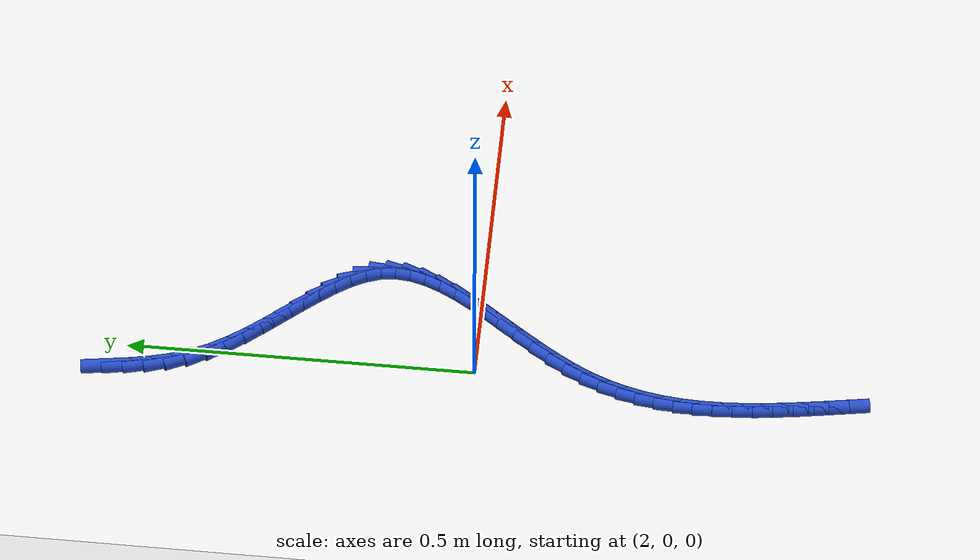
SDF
<sdf version="1.6">
 <world name="default">
  <model name="ground_plane">
   <static>1</static>
   <link name="link">
    <collision name="collision">
     <geometry><plane><normal>0 0 1</normal><size>100 100</size></plane></geometry>
     <surface><friction><ode><mu>100</mu><mu2>50</mu2></ode></friction></surface>
    </collision>
    <visual name="visual">
     <cast_shadows>0</cast_shadows>
     <geometry><plane><normal>0 0 1</normal><size>100 100</size></plane></geometry>
     <material>
      <script><uri>file://media/materials/scripts/gazebo.material</uri><name>Gazebo/WhiteGlow</name></script>
     </material>
    </visual>
   </link>
  </model>
  <model name="line">
   <link name="link_103">
    <pose>1.9564693129658475 0.5191426443502426 0.01 0 1.57 -1.4234752158057509</pose>
    <collision name="collision">
     <geometry><cylinder><radius>0.01</radius><length>0.08</length></cylinder></geometry>
    </collision>
    <visual name="visual">
     <material>
      <script><name>Gazebo/Blue</name><uri>file://media/materials/scripts/gazebo.material</uri></script>
     </material>
     <geometry><cylinder><radius>0.01</radius><length>0.08</length></cylinder></geometry>
    </visual>
   </link>
   <link name="link_104">
    <pose>1.9607513979031044 0.4902868935668443 0.01 0 1.57 -1.3808215258606822</pose>
    <collision name="collision">
     <geometry><cylinder><radius>0.01</radius><length>0.08</length></cylinder></geometry>
    </collision>
    <visual name="visual">
     <material>
      <script><name>Gazebo/Blue</name><uri>file://media/materials/scripts/gazebo.material</uri></script>
     </material>
     <geometry><cylinder><radius>0.01</radius><length>0.08</length></cylinder></geometry>
    </visual>
   </link>
   <link name="link_105">
    <pose>1.9662614771434177 0.46163239759659774 0.01 0 1.57 -1.3167183021721809</pose>
    <collision name="collision">
     <geometry><cylinder><radius>0.01</radius><length>0.08</length></cylinder></geometry>
    </collision>
    <visual name="visual">
     <material>
      <script><name>Gazebo/Blue</name><uri>file://media/materials/scripts/gazebo.material</uri></script>
     </material>
     <geometry><cylinder><radius>0.01</radius><length>0.08</length></cylinder></geometry>
    </visual>
   </link>
   <link name="link_106">
    <pose>1.9735797310925138 0.43345170849553866 0.01 0 1.57 -1.2307291127943643</pose>
    <collision name="collision">
     <geometry><cylinder><radius>0.01</radius><length>0.08</length></cylinder></geometry>
    </collision>
    <visual name="visual">
     <material>
      <script><name>Gazebo/Blue</name><uri>file://media/materials/scripts/gazebo.material</uri></script>
     </material>
     <geometry><cylinder><radius>0.01</radius><length>0.08</length></cylinder></geometry>
    </visual>
   </link>
   <link name="link_107">
    <pose>1.9832863401561176 0.40601737831970425 0.01 0 1.57 -1.1242628585493688</pose>
    <collision name="collision">
     <geometry><cylinder><radius>0.01</radius><length>0.08</length></cylinder></geometry>
    </collision>
    <visual name="visual">
     <material>
      <script><name>Gazebo/Blue</name><uri>file://media/materials/scripts/gazebo.material</uri></script>
     </material>
     <geometry><cylinder><radius>0.01</radius><length>0.08</length></cylinder></geometry>
    </visual>
   </link>
   <link name="link_108">
    <pose>1.9959372888625755 0.3795944499081145 0.01 0 1.57 -1.0210021619059557</pose>
    <collision name="collision">
     <geometry><cylinder><radius>0.01</radius><length>0.08</length></cylinder></geometry>
    </collision>
    <visual name="visual">
     <material>
      <script><name>Gazebo/Blue</name><uri>file://media/materials/scripts/gazebo.material</uri></script>
     </material>
     <geometry><cylinder><radius>0.01</radius><length>0.08</length></cylinder></geometry>
    </visual>
   </link>
   <link name="link_109">
    <pose>2.01146601126139 0.35425475687755703 0.01 0 1.57 -0.9436065019082184</pose>
    <collision name="collision">
     <geometry><cylinder><radius>0.01</radius><length>0.08</length></cylinder></geometry>
    </collision>
    <visual name="visual">
     <material>
      <script><name>Gazebo/Blue</name><uri>file://media/materials/scripts/gazebo.material</uri></script>
     </material>
     <geometry><cylinder><radius>0.01</radius><length>0.08</length></cylinder></geometry>
    </visual>
   </link>
   <link name="link_110">
    <pose>2.0291443260753557 0.32986479980431344 0.01 0 1.57 -0.8908856722849666</pose>
    <collision name="collision">
     <geometry><cylinder><radius>0.01</radius><length>0.08</length></cylinder></geometry>
    </collision>
    <visual name="visual">
     <material>
      <script><name>Gazebo/Blue</name><uri>file://media/materials/scripts/gazebo.material</uri></script>
     </material>
     <geometry><cylinder><radius>0.01</radius><length>0.08</length></cylinder></geometry>
    </visual>
   </link>
   <link name="link_111">
    <pose>2.048212034107577 0.30628114246825816 0.01 0 1.57 -0.8609011492467439</pose>
    <collision name="collision">
     <geometry><cylinder><radius>0.01</radius><length>0.08</length></cylinder></geometry>
    </collision>
    <visual name="visual">
     <material>
      <script><name>Gazebo/Blue</name><uri>file://media/materials/scripts/gazebo.material</uri></script>
     </material>
     <geometry><cylinder><radius>0.01</radius><length>0.08</length></cylinder></geometry>
    </visual>
   </link>
   <link name="link_112">
    <pose>2.067908936161154 0.283360348649265 0.01 0 1.57 -0.852859481428476</pose>
    <collision name="collision">
     <geometry><cylinder><radius>0.01</radius><length>0.08</length></cylinder></geometry>
    </collision>
    <visual name="visual">
     <material>
      <script><name>Gazebo/Blue</name><uri>file://media/materials/scripts/gazebo.material</uri></script>
     </material>
     <geometry><cylinder><radius>0.01</radius><length>0.08</length></cylinder></geometry>
    </visual>
   </link>
   <link name="link_113">
    <pose>2.087474833039189 0.2609589821272083 0.01 0 1.57 -0.8675391492009737</pose>
    <collision name="collision">
     <geometry><cylinder><radius>0.01</radius><length>0.08</length></cylinder></geometry>
    </collision>
    <visual name="visual">
     <material>
      <script><name>Gazebo/Blue</name><uri>file://media/materials/scripts/gazebo.material</uri></script>
     </material>
     <geometry><cylinder><radius>0.01</radius><length>0.08</length></cylinder></geometry>
    </visual>
   </link>
   <link name="link_114">
    <pose>2.106149525544783 0.23893360668196206 0.01 0 1.57 -0.907660361638897</pose>
    <collision name="collision">
     <geometry><cylinder><radius>0.01</radius><length>0.08</length></cylinder></geometry>
    </collision>
    <visual name="visual">
     <material>
      <script><name>Gazebo/Blue</name><uri>file://media/materials/scripts/gazebo.material</uri></script>
     </material>
     <geometry><cylinder><radius>0.01</radius><length>0.08</length></cylinder></geometry>
    </visual>
   </link>
   <link name="link_115">
    <pose>2.1231728144810385 0.21714078609340043 0.01 0 1.57 -0.9782603682682869</pose>
    <collision name="collision">
     <geometry><cylinder><radius>0.01</radius><length>0.08</length></cylinder></geometry>
    </collision>
    <visual name="visual">
     <material>
      <script><name>Gazebo/Blue</name><uri>file://media/materials/scripts/gazebo.material</uri></script>
     </material>
     <geometry><cylinder><radius>0.01</radius><length>0.08</length></cylinder></geometry>
    </visual>
   </link>
   <link name="link_116">
    <pose>2.137784500651057 0.19543708414139757 0.01 0 1.57 -1.086739759827873</pose>
    <collision name="collision">
     <geometry><cylinder><radius>0.01</radius><length>0.08</length></cylinder></geometry>
    </collision>
    <visual name="visual">
     <material>
      <script><name>Gazebo/Blue</name><uri>file://media/materials/scripts/gazebo.material</uri></script>
     </material>
     <geometry><cylinder><radius>0.01</radius><length>0.08</length></cylinder></geometry>
    </visual>
   </link>
   <link name="link_117">
    <pose>2.14922438485794 0.17367906460582755 0.01 0 1.57 -1.2413065847724873</pose>
    <collision name="collision">
     <geometry><cylinder><radius>0.01</radius><length>0.08</length></cylinder></geometry>
    </collision>
    <visual name="visual">
     <material>
      <script><name>Gazebo/Blue</name><uri>file://media/materials/scripts/gazebo.material</uri></script>
     </material>
     <geometry><cylinder><radius>0.01</radius><length>0.08</length></cylinder></geometry>
    </visual>
   </link>
   <link name="link_118">
    <pose>2.15673226790479 0.15172329126656456 0.01 0 1.57 -1.4442454124217754</pose>
    <collision name="collision">
     <geometry><cylinder><radius>0.01</radius><length>0.08</length></cylinder></geometry>
    </collision>
    <visual name="visual">
     <material>
      <script><name>Gazebo/Blue</name><uri>file://media/materials/scripts/gazebo.material</uri></script>
     </material>
     <geometry><cylinder><radius>0.01</radius><length>0.08</length></cylinder></geometry>
    </visual>
   </link>
   <link name="link_119">
    <pose>2.1595688200575314 0.1294287595588568 0.01 0 1.57 1.4850054450274166</pose>
    <collision name="collision">
     <geometry><cylinder><radius>0.01</radius><length>0.08</length></cylinder></geometry>
    </collision>
    <visual name="visual">
     <material>
      <script><name>Gazebo/Blue</name><uri>file://media/materials/scripts/gazebo.material</uri></script>
     </material>
     <geometry><cylinder><radius>0.01</radius><length>0.08</length></cylinder></geometry>
    </visual>
   </link>
   <link name="link_120">
    <pose>2.1576164155724133 0.10672690424530787 0.01 0 1.57 1.3106794036830542</pose>
    <collision name="collision">
     <geometry><cylinder><radius>0.01</radius><length>0.08</length></cylinder></geometry>
    </collision>
    <visual name="visual">
     <material>
      <script><name>Gazebo/Blue</name><uri>file://media/materials/scripts/gazebo.material</uri></script>
     </material>
     <geometry><cylinder><radius>0.01</radius><length>0.08</length></cylinder></geometry>
    </visual>
   </link>
   <link name="link_121">
    <pose>2.151469826422222 0.08363216681229659 0.01 0 1.57 1.1786113651986823</pose>
    <collision name="collision">
     <geometry><cylinder><radius>0.01</radius><length>0.08</length></cylinder></geometry>
    </collision>
    <visual name="visual">
     <material>
      <script><name>Gazebo/Blue</name><uri>file://media/materials/scripts/gazebo.material</uri></script>
     </material>
     <geometry><cylinder><radius>0.01</radius><length>0.08</length></cylinder></geometry>
    </visual>
   </link>
   <link name="link_122">
    <pose>2.1417629382898125 0.060163546173678785 0.01 0 1.57 1.083213500627686</pose>
    <collision name="collision">
     <geometry><cylinder><radius>0.01</radius><length>0.08</length></cylinder></geometry>
    </collision>
    <visual name="visual">
     <material>
      <script><name>Gazebo/Blue</name><uri>file://media/materials/scripts/gazebo.material</uri></script>
     </material>
     <geometry><cylinder><radius>0.01</radius><length>0.08</length></cylinder></geometry>
    </visual>
   </link>
   <link name="link_123">
    <pose>2.1291296368580355 0.03634004124330986 0.01 0 1.57 1.0173865766855497</pose>
    <collision name="collision">
     <geometry><cylinder><radius>0.01</radius><length>0.08</length></cylinder></geometry>
    </collision>
    <visual name="visual">
     <material>
      <script><name>Gazebo/Blue</name><uri>file://media/materials/scripts/gazebo.material</uri></script>
     </material>
     <geometry><cylinder><radius>0.01</radius><length>0.08</length></cylinder></geometry>
    </visual>
   </link>
   <link name="link_124">
    <pose>2.114203807809743 0.01218065093504523 0.01 0 1.57 0.97528095523367</pose>
    <collision name="collision">
     <geometry><cylinder><radius>0.01</radius><length>0.08</length></cylinder></geometry>
    </collision>
    <visual name="visual">
     <material>
      <script><name>Gazebo/Blue</name><uri>file://media/materials/scripts/gazebo.material</uri></script>
     </material>
     <geometry><cylinder><radius>0.01</radius><length>0.08</length></cylinder></geometry>
    </visual>
   </link>
   <link name="link_125">
    <pose>2.0976193368277865 -0.01229562583725968 0.01 0 1.57 0.9528654273634143</pose>
    <collision name="collision">
     <geometry><cylinder><radius>0.01</radius><length>0.08</length></cylinder></geometry>
    </collision>
    <visual name="visual">
     <material>
      <script><name>Gazebo/Blue</name><uri>file://media/materials/scripts/gazebo.material</uri></script>
     </material>
     <geometry><cylinder><radius>0.01</radius><length>0.08</length></cylinder></geometry>
    </visual>
   </link>
   <link name="link_126">
    <pose>2.0800101095950185 -0.037069790159749386 0.01 0 1.57 0.9477755675914958</pose>
    <collision name="collision">
     <geometry><cylinder><radius>0.01</radius><length>0.08</length></cylinder></geometry>
    </collision>
    <visual name="visual">
     <material>
      <script><name>Gazebo/Blue</name><uri>file://media/materials/scripts/gazebo.material</uri></script>
     </material>
     <geometry><cylinder><radius>0.01</radius><length>0.08</length></cylinder></geometry>
    </visual>
   </link>
   <link name="link_127">
    <pose>2.062010011794292 -0.06212284311856853 0.01 0 1.57 0.959062946560598</pose>
    <collision name="collision">
     <geometry><cylinder><radius>0.01</radius><length>0.08</length></cylinder></geometry>
    </collision>
    <visual name="visual">
     <material>
      <script><name>Gazebo/Blue</name><uri>file://media/materials/scripts/gazebo.material</uri></script>
     </material>
     <geometry><cylinder><radius>0.01</radius><length>0.08</length></cylinder></geometry>
    </visual>
   </link>
   <link name="link_128">
    <pose>2.044252929108459 -0.08743578579986164 0.01 0 1.57 0.9870240315498232</pose>
    <collision name="collision">
     <geometry><cylinder><radius>0.01</radius><length>0.08</length></cylinder></geometry>
    </collision>
    <visual name="visual">
     <material>
      <script><name>Gazebo/Blue</name><uri>file://media/materials/scripts/gazebo.material</uri></script>
     </material>
     <geometry><cylinder><radius>0.01</radius><length>0.08</length></cylinder></geometry>
    </visual>
   </link>
   <link name="link_129">
    <pose>2.02737274722037 -0.11298961928977327 0.01 0 1.57 1.033121021372685</pose>
    <collision name="collision">
     <geometry><cylinder><radius>0.01</radius><length>0.08</length></cylinder></geometry>
    </collision>
    <visual name="visual">
     <material>
      <script><name>Gazebo/Blue</name><uri>file://media/materials/scripts/gazebo.material</uri></script>
     </material>
     <geometry><cylinder><radius>0.01</radius><length>0.08</length></cylinder></geometry>
    </visual>
   </link>
   <link name="link_130">
    <pose>2.0120033518128784 -0.13876534467444807 0.01 0 1.57 1.0996556289329498</pose>
    <collision name="collision">
     <geometry><cylinder><radius>0.01</radius><length>0.08</length></cylinder></geometry>
    </collision>
    <visual name="visual">
     <material>
      <script><name>Gazebo/Blue</name><uri>file://media/materials/scripts/gazebo.material</uri></script>
     </material>
     <geometry><cylinder><radius>0.01</radius><length>0.08</length></cylinder></geometry>
    </visual>
   </link>
   <link name="link_131">
    <pose>1.9987696546916898 -0.16474424410204405 0.01 0 1.57 1.1790601181803781</pose>
    <collision name="collision">
     <geometry><cylinder><radius>0.01</radius><length>0.08</length></cylinder></geometry>
    </collision>
    <visual name="visual">
     <material>
      <script><name>Gazebo/Blue</name><uri>file://media/materials/scripts/gazebo.material</uri></script>
     </material>
     <geometry><cylinder><radius>0.01</radius><length>0.08</length></cylinder></geometry>
    </visual>
   </link>
   <link name="link_132">
    <pose>1.9879575543461887 -0.19091821762463568 0.01 0 1.57 1.257674250436467</pose>
    <collision name="collision">
     <geometry><cylinder><radius>0.01</radius><length>0.08</length></cylinder></geometry>
    </collision>
    <visual name="visual">
     <material>
      <script><name>Gazebo/Blue</name><uri>file://media/materials/scripts/gazebo.material</uri></script>
     </material>
     <geometry><cylinder><radius>0.01</radius><length>0.08</length></cylinder></geometry>
    </visual>
   </link>
   <link name="link_133">
    <pose>1.9794181719473807 -0.21729278252869294 0.01 0 1.57 1.33295946395152</pose>
    <collision name="collision">
     <geometry><cylinder><radius>0.01</radius><length>0.08</length></cylinder></geometry>
    </collision>
    <visual name="visual">
     <material>
      <script><name>Gazebo/Blue</name><uri>file://media/materials/scripts/gazebo.material</uri></script>
     </material>
     <geometry><cylinder><radius>0.01</radius><length>0.08</length></cylinder></geometry>
    </visual>
   </link>
   <link name="link_134">
    <pose>1.9729741295823777 -0.24387434869256924 0.01 0 1.57 1.4034606411740083</pose>
    <collision name="collision">
     <geometry><cylinder><radius>0.01</radius><length>0.08</length></cylinder></geometry>
    </collision>
    <visual name="visual">
     <material>
      <script><name>Gazebo/Blue</name><uri>file://media/materials/scripts/gazebo.material</uri></script>
     </material>
     <geometry><cylinder><radius>0.01</radius><length>0.08</length></cylinder></geometry>
    </visual>
   </link>
   <link name="link_135">
    <pose>1.968448049338291 -0.27066932599461774 0.01 0 1.57 1.4680494173206549</pose>
    <collision name="collision">
     <geometry><cylinder><radius>0.01</radius><length>0.08</length></cylinder></geometry>
    </collision>
    <visual name="visual">
     <material>
      <script><name>Gazebo/Blue</name><uri>file://media/materials/scripts/gazebo.material</uri></script>
     </material>
     <geometry><cylinder><radius>0.01</radius><length>0.08</length></cylinder></geometry>
    </visual>
   </link>
   <link name="link_136">
    <pose>1.9656625533022305 -0.29768412431319186 0.01 0 1.57 1.525956961303277</pose>
    <collision name="collision">
     <geometry><cylinder><radius>0.01</radius><length>0.08</length></cylinder></geometry>
    </collision>
    <visual name="visual">
     <material>
      <script><name>Gazebo/Blue</name><uri>file://media/materials/scripts/gazebo.material</uri></script>
     </material>
     <geometry><cylinder><radius>0.01</radius><length>0.08</length></cylinder></geometry>
    </visual>
   </link>
   <link name="link_137">
    <pose>1.9644402635613094 -0.324925153526645 0.01 0 1.57 -1.5648438381067888</pose>
    <collision name="collision">
     <geometry><cylinder><radius>0.01</radius><length>0.08</length></cylinder></geometry>
    </collision>
    <visual name="visual">
     <material>
      <script><name>Gazebo/Blue</name><uri>file://media/materials/scripts/gazebo.material</uri></script>
     </material>
     <geometry><cylinder><radius>0.01</radius><length>0.08</length></cylinder></geometry>
    </visual>
   </link>
   <link name="link_138">
    <pose>1.9646038022026375 -0.3523988235133305 0.01 0 1.57 -1.5213291575546326</pose>
    <collision name="collision">
     <geometry><cylinder><radius>0.01</radius><length>0.08</length></cylinder></geometry>
    </collision>
    <visual name="visual">
     <material>
      <script><name>Gazebo/Blue</name><uri>file://media/materials/scripts/gazebo.material</uri></script>
     </material>
     <geometry><cylinder><radius>0.01</radius><length>0.08</length></cylinder></geometry>
    </visual>
   </link>
   <link name="link_139">
    <pose>1.9659757913133273 -0.38011154415160175 0.01 0 1.57 -1.4850550545242498</pose>
    <collision name="collision">
     <geometry><cylinder><radius>0.01</radius><length>0.08</length></cylinder></geometry>
    </collision>
    <visual name="visual">
     <material>
      <script><name>Gazebo/Blue</name><uri>file://media/materials/scripts/gazebo.material</uri></script>
     </material>
     <geometry><cylinder><radius>0.01</radius><length>0.08</length></cylinder></geometry>
    </visual>
   </link>
   <link name="link_140">
    <pose>1.9683788529804889 -0.4080697253198119 0.01 0 1.57 -1.4558584896580635</pose>
    <collision name="collision">
     <geometry><cylinder><radius>0.01</radius><length>0.08</length></cylinder></geometry>
    </collision>
    <visual name="visual">
     <material>
      <script><name>Gazebo/Blue</name><uri>file://media/materials/scripts/gazebo.material</uri></script>
     </material>
     <geometry><cylinder><radius>0.01</radius><length>0.08</length></cylinder></geometry>
    </visual>
   </link>
   <link name="link_141">
    <pose>1.971635609291233 -0.43627977689631425 0.01 0 1.57 -1.4335093184505274</pose>
    <collision name="collision">
     <geometry><cylinder><radius>0.01</radius><length>0.08</length></cylinder></geometry>
    </collision>
    <visual name="visual">
     <material>
      <script><name>Gazebo/Blue</name><uri>file://media/materials/scripts/gazebo.material</uri></script>
     </material>
     <geometry><cylinder><radius>0.01</radius><length>0.08</length></cylinder></geometry>
    </visual>
   </link>
   <link name="link_142">
    <pose>1.9755686823326724 -0.46474810875946243 0.01 0 1.57 -1.417754444183263</pose>
    <collision name="collision">
     <geometry><cylinder><radius>0.01</radius><length>0.08</length></cylinder></geometry>
    </collision>
    <visual name="visual">
     <material>
      <script><name>Gazebo/Blue</name><uri>file://media/materials/scripts/gazebo.material</uri></script>
     </material>
     <geometry><cylinder><radius>0.01</radius><length>0.08</length></cylinder></geometry>
    </visual>
   </link>
   <link name="link_143">
    <pose>1.9800006941919177 -0.4934811307876096 0.01 0 1.57 -1.4083475536732548</pose>
    <collision name="collision">
     <geometry><cylinder><radius>0.01</radius><length>0.08</length></cylinder></geometry>
    </collision>
    <visual name="visual">
     <material>
      <script><name>Gazebo/Blue</name><uri>file://media/materials/scripts/gazebo.material</uri></script>
     </material>
     <geometry><cylinder><radius>0.01</radius><length>0.08</length></cylinder></geometry>
    </visual>
   </link>
   <link name="link_144">
    <pose>1.9847542669560798 -0.522485252859109 0.01 0 1.57 -1.405132909147395</pose>
    <collision name="collision">
     <geometry><cylinder><radius>0.01</radius><length>0.08</length></cylinder></geometry>
    </collision>
    <visual name="visual">
     <material>
      <script><name>Gazebo/Blue</name><uri>file://media/materials/scripts/gazebo.material</uri></script>
     </material>
     <geometry><cylinder><radius>0.01</radius><length>0.08</length></cylinder></geometry>
    </visual>
   </link>
  </model>
 </world>
</sdf>
